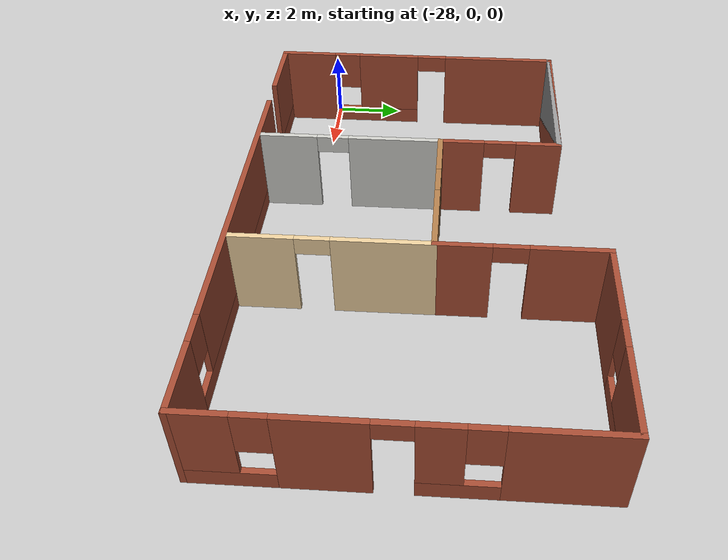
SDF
<?xml version='1.0'?>
<sdf version='1.7'>
  <model name='my_building'>
    <pose>-13.7626 3.17257 0 0 -0 0</pose>
    <link name='Wall_0'>
      <collision name='Wall_0_Collision'>
        <geometry>
          <box>
            <size>4.75 0.15 2.5</size>
          </box>
        </geometry>
        <pose>0 0 1.25 0 -0 0</pose>
      </collision>
      <visual name='Wall_0_Visual'>
        <pose>0 0 1.25 0 -0 0</pose>
        <geometry>
          <box>
            <size>4.75 0.15 2.5</size>
          </box>
        </geometry>
        <material>
          <script>
            <uri>file://media/materials/scripts/gazebo.material</uri>
            <name>Gazebo/Grey</name>
          </script>
          <ambient>1 1 1 1</ambient>
        </material>
        <meta>
          <layer>0</layer>
        </meta>
      </visual>
      <pose>-11.3376 3.8 0 0 -0 0</pose>
    </link>
    <link name='Wall_1'>
      <pose>-9.03756 2.125 0 0 -0 -1.5708</pose>
      <visual name='Wall_1_Visual_0'>
        <pose>-1.10816 0 1.25 0 -0 0</pose>
        <geometry>
          <box>
            <size>1.28368 0.15 2.5</size>
          </box>
        </geometry>
        <material>
          <script>
            <uri>file://media/materials/scripts/gazebo.material</uri>
            <name>Gazebo/Bricks</name>
          </script>
          <ambient>0.921569 0.807843 0.615686 1</ambient>
        </material>
        <meta>
          <layer>0</layer>
        </meta>
      </visual>
      <collision name='Wall_1_Collision_0'>
        <geometry>
          <box>
            <size>1.28368 0.15 2.5</size>
          </box>
        </geometry>
        <pose>-1.10816 0 1.25 0 -0 0</pose>
      </collision>
      <visual name='Wall_1_Visual_1'>
        <pose>1.09184 0 1.25 0 -0 0</pose>
        <geometry>
          <box>
            <size>1.31632 0.15 2.5</size>
          </box>
        </geometry>
        <material>
          <script>
            <uri>file://media/materials/scripts/gazebo.material</uri>
            <name>Gazebo/Bricks</name>
          </script>
          <ambient>0.921569 0.807843 0.615686 1</ambient>
        </material>
        <meta>
          <layer>0</layer>
        </meta>
      </visual>
      <collision name='Wall_1_Collision_1'>
        <geometry>
          <box>
            <size>1.31632 0.15 2.5</size>
          </box>
        </geometry>
        <pose>1.09184 0 1.25 0 -0 0</pose>
      </collision>
      <visual name='Wall_1_Visual_2'>
        <pose>-0.016321 0 2.25 0 -0 0</pose>
        <geometry>
          <box>
            <size>0.9 0.15 0.5</size>
          </box>
        </geometry>
        <material>
          <script>
            <uri>file://media/materials/scripts/gazebo.material</uri>
            <name>Gazebo/Bricks</name>
          </script>
          <ambient>0.921569 0.807843 0.615686 1</ambient>
        </material>
        <meta>
          <layer>0</layer>
        </meta>
      </visual>
      <collision name='Wall_1_Collision_2'>
        <geometry>
          <box>
            <size>0.9 0.15 0.5</size>
          </box>
        </geometry>
        <pose>-0.016321 0 2.25 0 -0 0</pose>
      </collision>
    </link>
    <link name='Wall_11'>
      <pose>-4.68756 -2.1 0 0 -0 -1.5708</pose>
      <visual name='Wall_11_Visual_0'>
        <pose>-1.29151 0 1.25 0 -0 0</pose>
        <geometry>
          <box>
            <size>2.66698 0.15 2.5</size>
          </box>
        </geometry>
        <material>
          <script>
            <uri>file://media/materials/scripts/gazebo.material</uri>
            <name>Gazebo/Grey</name>
          </script>
          <ambient>0.921569 0.807843 0.615686 1</ambient>
        </material>
        <meta>
          <layer>0</layer>
        </meta>
      </visual>
      <collision name='Wall_11_Collision_0'>
        <geometry>
          <box>
            <size>2.66698 0.15 2.5</size>
          </box>
        </geometry>
        <pose>-1.29151 0 1.25 0 -0 0</pose>
      </collision>
      <visual name='Wall_11_Visual_1'>
        <pose>1.78349 0 1.25 0 -0 0</pose>
        <geometry>
          <box>
            <size>1.68302 0.15 2.5</size>
          </box>
        </geometry>
        <material>
          <script>
            <uri>file://media/materials/scripts/gazebo.material</uri>
            <name>Gazebo/Grey</name>
          </script>
          <ambient>0.921569 0.807843 0.615686 1</ambient>
        </material>
        <meta>
          <layer>0</layer>
        </meta>
      </visual>
      <collision name='Wall_11_Collision_1'>
        <geometry>
          <box>
            <size>1.68302 0.15 2.5</size>
          </box>
        </geometry>
        <pose>1.78349 0 1.25 0 -0 0</pose>
      </collision>
      <visual name='Wall_11_Visual_2'>
        <pose>0.491981 0 2.25 0 -0 0</pose>
        <geometry>
          <box>
            <size>0.9 0.15 0.5</size>
          </box>
        </geometry>
        <material>
          <script>
            <uri>file://media/materials/scripts/gazebo.material</uri>
            <name>Gazebo/Grey</name>
          </script>
          <ambient>0.921569 0.807843 0.615686 1</ambient>
        </material>
        <meta>
          <layer>0</layer>
        </meta>
      </visual>
      <collision name='Wall_11_Collision_2'>
        <geometry>
          <box>
            <size>0.9 0.15 0.5</size>
          </box>
        </geometry>
        <pose>0.491981 0 2.25 0 -0 0</pose>
      </collision>
    </link>
    <link name='Wall_13'>
      <pose>-9.03756 -2.1 0 0 -0 -1.5708</pose>
      <visual name='Wall_13_Visual_0'>
        <pose>-1.27128 0 1.25 0 -0 0</pose>
        <geometry>
          <box>
            <size>2.70744 0.15 2.5</size>
          </box>
        </geometry>
        <material>
          <script>
            <uri>file://media/materials/scripts/gazebo.material</uri>
            <name>Gazebo/CeilingTiled</name>
          </script>
          <ambient>0.921569 0.807843 0.615686 1</ambient>
        </material>
        <meta>
          <layer>0</layer>
        </meta>
      </visual>
      <collision name='Wall_13_Collision_0'>
        <geometry>
          <box>
            <size>2.70744 0.15 2.5</size>
          </box>
        </geometry>
        <pose>-1.27128 0 1.25 0 -0 0</pose>
      </collision>
      <visual name='Wall_13_Visual_1'>
        <pose>1.80372 0 1.25 0 -0 0</pose>
        <geometry>
          <box>
            <size>1.64256 0.15 2.5</size>
          </box>
        </geometry>
        <material>
          <script>
            <uri>file://media/materials/scripts/gazebo.material</uri>
            <name>Gazebo/CeilingTiled</name>
          </script>
          <ambient>0.921569 0.807843 0.615686 1</ambient>
        </material>
        <meta>
          <layer>0</layer>
        </meta>
      </visual>
      <collision name='Wall_13_Collision_1'>
        <geometry>
          <box>
            <size>1.64256 0.15 2.5</size>
          </box>
        </geometry>
        <pose>1.80372 0 1.25 0 -0 0</pose>
      </collision>
      <visual name='Wall_13_Visual_2'>
        <pose>0.532437 0 2.25 0 -0 0</pose>
        <geometry>
          <box>
            <size>0.9 0.15 0.5</size>
          </box>
        </geometry>
        <material>
          <script>
            <uri>file://media/materials/scripts/gazebo.material</uri>
            <name>Gazebo/CeilingTiled</name>
          </script>
          <ambient>0.921569 0.807843 0.615686 1</ambient>
        </material>
        <meta>
          <layer>0</layer>
        </meta>
      </visual>
      <collision name='Wall_13_Collision_2'>
        <geometry>
          <box>
            <size>0.9 0.15 0.5</size>
          </box>
        </geometry>
        <pose>0.532437 0 2.25 0 -0 0</pose>
      </collision>
    </link>
    <link name='Wall_2'>
      <pose>-6.86256 0.45 0 0 -0 0</pose>
      <visual name='Wall_2_Visual_0'>
        <pose>-1.54151 0 1.25 0 -0 0</pose>
        <geometry>
          <box>
            <size>1.41698 0.15 2.5</size>
          </box>
        </geometry>
        <material>
          <script>
            <uri>file://media/materials/scripts/gazebo.material</uri>
            <name>Gazebo/Wood</name>
          </script>
          <ambient>1 1 1 1</ambient>
        </material>
        <meta>
          <layer>0</layer>
        </meta>
      </visual>
      <collision name='Wall_2_Collision_0'>
        <geometry>
          <box>
            <size>1.41698 0.15 2.5</size>
          </box>
        </geometry>
        <pose>-1.54151 0 1.25 0 -0 0</pose>
      </collision>
      <visual name='Wall_2_Visual_1'>
        <pose>1.15849 0 1.25 0 -0 0</pose>
        <geometry>
          <box>
            <size>2.18302 0.15 2.5</size>
          </box>
        </geometry>
        <material>
          <script>
            <uri>file://media/materials/scripts/gazebo.material</uri>
            <name>Gazebo/Wood</name>
          </script>
          <ambient>1 1 1 1</ambient>
        </material>
        <meta>
          <layer>0</layer>
        </meta>
      </visual>
      <collision name='Wall_2_Collision_1'>
        <geometry>
          <box>
            <size>2.18302 0.15 2.5</size>
          </box>
        </geometry>
        <pose>1.15849 0 1.25 0 -0 0</pose>
      </collision>
      <visual name='Wall_2_Visual_2'>
        <pose>-0.383018 0 2.25 0 -0 0</pose>
        <geometry>
          <box>
            <size>0.9 0.15 0.5</size>
          </box>
        </geometry>
        <material>
          <script>
            <uri>file://media/materials/scripts/gazebo.material</uri>
            <name>Gazebo/Wood</name>
          </script>
          <ambient>1 1 1 1</ambient>
        </material>
        <meta>
          <layer>0</layer>
        </meta>
      </visual>
      <collision name='Wall_2_Collision_2'>
        <geometry>
          <box>
            <size>0.9 0.15 0.5</size>
          </box>
        </geometry>
        <pose>-0.383018 0 2.25 0 -0 0</pose>
      </collision>
    </link>
    <link name='Wall_3'>
      <pose>-4.68756 2.625 0 0 -0 1.5708</pose>
      <visual name='Wall_3_Visual_0'>
        <pose>-1.4907 0 1.25 0 -0 0</pose>
        <geometry>
          <box>
            <size>1.5186 0.15 2.5</size>
          </box>
        </geometry>
        <material>
          <script>
            <uri>file://media/materials/scripts/gazebo.material</uri>
            <name>Gazebo/Bricks</name>
          </script>
          <ambient>0.921569 0.807843 0.615686 1</ambient>
        </material>
        <meta>
          <layer>0</layer>
        </meta>
      </visual>
      <collision name='Wall_3_Collision_0'>
        <geometry>
          <box>
            <size>1.5186 0.15 2.5</size>
          </box>
        </geometry>
        <pose>-1.4907 0 1.25 0 -0 0</pose>
      </collision>
      <visual name='Wall_3_Visual_1'>
        <pose>1.2093 0 1.25 0 -0 0</pose>
        <geometry>
          <box>
            <size>2.0814 0.15 2.5</size>
          </box>
        </geometry>
        <material>
          <script>
            <uri>file://media/materials/scripts/gazebo.material</uri>
            <name>Gazebo/Bricks</name>
          </script>
          <ambient>0.921569 0.807843 0.615686 1</ambient>
        </material>
        <meta>
          <layer>0</layer>
        </meta>
      </visual>
      <collision name='Wall_3_Collision_1'>
        <geometry>
          <box>
            <size>2.0814 0.15 2.5</size>
          </box>
        </geometry>
        <pose>1.2093 0 1.25 0 -0 0</pose>
      </collision>
      <visual name='Wall_3_Visual_2'>
        <pose>-0.281401 0 2.25 0 -0 0</pose>
        <geometry>
          <box>
            <size>0.9 0.15 0.5</size>
          </box>
        </geometry>
        <material>
          <script>
            <uri>file://media/materials/scripts/gazebo.material</uri>
            <name>Gazebo/Bricks</name>
          </script>
          <ambient>0.921569 0.807843 0.615686 1</ambient>
        </material>
        <meta>
          <layer>0</layer>
        </meta>
      </visual>
      <collision name='Wall_3_Collision_2'>
        <geometry>
          <box>
            <size>0.9 0.15 0.5</size>
          </box>
        </geometry>
        <pose>-0.281401 0 2.25 0 -0 0</pose>
      </collision>
    </link>
    <link name='Wall_4'>
      <pose>-2.01256 4.8 0 0 -0 0</pose>
      <visual name='Wall_4_Visual_0'>
        <pose>-1.58212 0 1.25 0 -0 0</pose>
        <geometry>
          <box>
            <size>2.33575 0.15 2.5</size>
          </box>
        </geometry>
        <material>
          <script>
            <uri>file://media/materials/scripts/gazebo.material</uri>
            <name>Gazebo/Bricks</name>
          </script>
          <ambient>0.921569 0.807843 0.615686 1</ambient>
        </material>
        <meta>
          <layer>0</layer>
        </meta>
      </visual>
      <collision name='Wall_4_Collision_0'>
        <geometry>
          <box>
            <size>2.33575 0.15 2.5</size>
          </box>
        </geometry>
        <pose>-1.58212 0 1.25 0 -0 0</pose>
      </collision>
      <visual name='Wall_4_Visual_1'>
        <pose>1.16788 0 0.25 0 -0 0</pose>
        <geometry>
          <box>
            <size>3.16425 0.15 0.5</size>
          </box>
        </geometry>
        <material>
          <script>
            <uri>file://media/materials/scripts/gazebo.material</uri>
            <name>Gazebo/Bricks</name>
          </script>
          <ambient>0.921569 0.807843 0.615686 1</ambient>
        </material>
        <meta>
          <layer>0</layer>
        </meta>
      </visual>
      <collision name='Wall_4_Collision_1'>
        <geometry>
          <box>
            <size>3.16425 0.15 0.5</size>
          </box>
        </geometry>
        <pose>1.16788 0 0.25 0 -0 0</pose>
      </collision>
      <visual name='Wall_4_Visual_2'>
        <pose>1.56788 0 1.5 0 -0 0</pose>
        <geometry>
          <box>
            <size>2.36425 0.15 2</size>
          </box>
        </geometry>
        <material>
          <script>
            <uri>file://media/materials/scripts/gazebo.material</uri>
            <name>Gazebo/Bricks</name>
          </script>
          <ambient>0.921569 0.807843 0.615686 1</ambient>
        </material>
        <meta>
          <layer>0</layer>
        </meta>
      </visual>
      <collision name='Wall_4_Collision_2'>
        <geometry>
          <box>
            <size>2.36425 0.15 2</size>
          </box>
        </geometry>
        <pose>1.56788 0 1.5 0 -0 0</pose>
      </collision>
      <visual name='Wall_4_Visual_3'>
        <pose>-0.014249 0 1.9 0 -0 0</pose>
        <geometry>
          <box>
            <size>0.8 0.15 1.2</size>
          </box>
        </geometry>
        <material>
          <script>
            <uri>file://media/materials/scripts/gazebo.material</uri>
            <name>Gazebo/Bricks</name>
          </script>
          <ambient>0.921569 0.807843 0.615686 1</ambient>
        </material>
        <meta>
          <layer>0</layer>
        </meta>
      </visual>
      <collision name='Wall_4_Collision_3'>
        <geometry>
          <box>
            <size>0.8 0.15 1.2</size>
          </box>
        </geometry>
        <pose>-0.014249 0 1.9 0 -0 0</pose>
      </collision>
    </link>
    <link name='Wall_5'>
      <pose>0.662438 0 0 0 -0 -1.5708</pose>
      <visual name='Wall_5_Visual_0'>
        <pose>-3.50588 0 1.25 0 -0 0</pose>
        <geometry>
          <box>
            <size>2.73823 0.15 2.5</size>
          </box>
        </geometry>
        <material>
          <script>
            <uri>file://media/materials/scripts/gazebo.material</uri>
            <name>Gazebo/Bricks</name>
          </script>
          <ambient>0.921569 0.807843 0.615686 1</ambient>
        </material>
        <meta>
          <layer>0</layer>
        </meta>
      </visual>
      <collision name='Wall_5_Collision_0'>
        <geometry>
          <box>
            <size>2.73823 0.15 2.5</size>
          </box>
        </geometry>
        <pose>-3.50588 0 1.25 0 -0 0</pose>
      </collision>
      <visual name='Wall_5_Visual_1'>
        <pose>1.64605 0 1.25 0 -0 0</pose>
        <geometry>
          <box>
            <size>2.0628 0.15 2.5</size>
          </box>
        </geometry>
        <material>
          <script>
            <uri>file://media/materials/scripts/gazebo.material</uri>
            <name>Gazebo/Bricks</name>
          </script>
          <ambient>0.921569 0.807843 0.615686 1</ambient>
        </material>
        <meta>
          <layer>0</layer>
        </meta>
      </visual>
      <collision name='Wall_5_Collision_1'>
        <geometry>
          <box>
            <size>2.0628 0.15 2.5</size>
          </box>
        </geometry>
        <pose>1.64605 0 1.25 0 -0 0</pose>
      </collision>
      <visual name='Wall_5_Visual_2'>
        <pose>-1.21106 0 0.25 0 -0 0</pose>
        <geometry>
          <box>
            <size>1.85141 0.15 0.5</size>
          </box>
        </geometry>
        <material>
          <script>
            <uri>file://media/materials/scripts/gazebo.material</uri>
            <name>Gazebo/Bricks</name>
          </script>
          <ambient>0.921569 0.807843 0.615686 1</ambient>
        </material>
        <meta>
          <layer>0</layer>
        </meta>
      </visual>
      <collision name='Wall_5_Collision_2'>
        <geometry>
          <box>
            <size>1.85141 0.15 0.5</size>
          </box>
        </geometry>
        <pose>-1.21106 0 0.25 0 -0 0</pose>
      </collision>
      <visual name='Wall_5_Visual_3'>
        <pose>3.77622 0 0.25 0 -0 0</pose>
        <geometry>
          <box>
            <size>2.19755 0.15 0.5</size>
          </box>
        </geometry>
        <material>
          <script>
            <uri>file://media/materials/scripts/gazebo.material</uri>
            <name>Gazebo/Bricks</name>
          </script>
          <ambient>0.921569 0.807843 0.615686 1</ambient>
        </material>
        <meta>
          <layer>0</layer>
        </meta>
      </visual>
      <collision name='Wall_5_Collision_3'>
        <geometry>
          <box>
            <size>2.19755 0.15 0.5</size>
          </box>
        </geometry>
        <pose>3.77622 0 0.25 0 -0 0</pose>
      </collision>
      <visual name='Wall_5_Visual_4'>
        <pose>-0.811059 0 1.5 0 -0 0</pose>
        <geometry>
          <box>
            <size>1.05141 0.15 2</size>
          </box>
        </geometry>
        <material>
          <script>
            <uri>file://media/materials/scripts/gazebo.material</uri>
            <name>Gazebo/Bricks</name>
          </script>
          <ambient>0.921569 0.807843 0.615686 1</ambient>
        </material>
        <meta>
          <layer>0</layer>
        </meta>
      </visual>
      <collision name='Wall_5_Collision_4'>
        <geometry>
          <box>
            <size>1.05141 0.15 2</size>
          </box>
        </geometry>
        <pose>-0.811059 0 1.5 0 -0 0</pose>
      </collision>
      <visual name='Wall_5_Visual_5'>
        <pose>-0.811059 0 1.5 0 -0 0</pose>
        <geometry>
          <box>
            <size>1.05141 0.15 2</size>
          </box>
        </geometry>
        <material>
          <script>
            <uri>file://media/materials/scripts/gazebo.material</uri>
            <name>Gazebo/Bricks</name>
          </script>
          <ambient>0.921569 0.807843 0.615686 1</ambient>
        </material>
        <meta>
          <layer>0</layer>
        </meta>
      </visual>
      <collision name='Wall_5_Collision_5'>
        <geometry>
          <box>
            <size>1.05141 0.15 2</size>
          </box>
        </geometry>
        <pose>-0.811059 0 1.5 0 -0 0</pose>
      </collision>
      <visual name='Wall_5_Visual_6'>
        <pose>4.17622 0 1.5 0 -0 0</pose>
        <geometry>
          <box>
            <size>1.39755 0.15 2</size>
          </box>
        </geometry>
        <material>
          <script>
            <uri>file://media/materials/scripts/gazebo.material</uri>
            <name>Gazebo/Bricks</name>
          </script>
          <ambient>0.921569 0.807843 0.615686 1</ambient>
        </material>
        <meta>
          <layer>0</layer>
        </meta>
      </visual>
      <collision name='Wall_5_Collision_6'>
        <geometry>
          <box>
            <size>1.39755 0.15 2</size>
          </box>
        </geometry>
        <pose>4.17622 0 1.5 0 -0 0</pose>
      </collision>
      <visual name='Wall_5_Visual_7'>
        <pose>-1.73676 0 1.9 0 -0 0</pose>
        <geometry>
          <box>
            <size>0.8 0.15 1.2</size>
          </box>
        </geometry>
        <material>
          <script>
            <uri>file://media/materials/scripts/gazebo.material</uri>
            <name>Gazebo/Bricks</name>
          </script>
          <ambient>0.921569 0.807843 0.615686 1</ambient>
        </material>
        <meta>
          <layer>0</layer>
        </meta>
      </visual>
      <collision name='Wall_5_Collision_7'>
        <geometry>
          <box>
            <size>0.8 0.15 1.2</size>
          </box>
        </geometry>
        <pose>-1.73676 0 1.9 0 -0 0</pose>
      </collision>
      <visual name='Wall_5_Visual_8'>
        <pose>3.07745 0 1.9 0 -0 0</pose>
        <geometry>
          <box>
            <size>0.8 0.15 1.2</size>
          </box>
        </geometry>
        <material>
          <script>
            <uri>file://media/materials/scripts/gazebo.material</uri>
            <name>Gazebo/Bricks</name>
          </script>
          <ambient>0.921569 0.807843 0.615686 1</ambient>
        </material>
        <meta>
          <layer>0</layer>
        </meta>
      </visual>
      <collision name='Wall_5_Collision_8'>
        <geometry>
          <box>
            <size>0.8 0.15 1.2</size>
          </box>
        </geometry>
        <pose>3.07745 0 1.9 0 -0 0</pose>
      </collision>
      <visual name='Wall_5_Visual_9'>
        <pose>0.164647 0 2.25 0 -0 0</pose>
        <geometry>
          <box>
            <size>0.9 0.15 0.5</size>
          </box>
        </geometry>
        <material>
          <script>
            <uri>file://media/materials/scripts/gazebo.material</uri>
            <name>Gazebo/Bricks</name>
          </script>
          <ambient>0.921569 0.807843 0.615686 1</ambient>
        </material>
        <meta>
          <layer>0</layer>
        </meta>
      </visual>
      <collision name='Wall_5_Collision_9'>
        <geometry>
          <box>
            <size>0.9 0.15 0.5</size>
          </box>
        </geometry>
        <pose>0.164647 0 2.25 0 -0 0</pose>
      </collision>
      <visual name='Wall_5_Visual_10'>
        <pose>0.164647 0 2.25 0 -0 0</pose>
        <geometry>
          <box>
            <size>0.9 0.15 0.5</size>
          </box>
        </geometry>
        <material>
          <script>
            <uri>file://media/materials/scripts/gazebo.material</uri>
            <name>Gazebo/Bricks</name>
          </script>
          <ambient>0.921569 0.807843 0.615686 1</ambient>
        </material>
        <meta>
          <layer>0</layer>
        </meta>
      </visual>
      <collision name='Wall_5_Collision_10'>
        <geometry>
          <box>
            <size>0.9 0.15 0.5</size>
          </box>
        </geometry>
        <pose>0.164647 0 2.25 0 -0 0</pose>
      </collision>
    </link>
    <link name='Wall_6'>
      <pose>-6.51256 -4.8 0 0 -0 3.14159</pose>
      <visual name='Wall_6_Visual_0'>
        <pose>-6.29038 0 1.25 0 -0 0</pose>
        <geometry>
          <box>
            <size>1.91924 0.15 2.5</size>
          </box>
        </geometry>
        <material>
          <script>
            <uri>file://media/materials/scripts/gazebo.material</uri>
            <name>Gazebo/Bricks</name>
          </script>
          <ambient>1 1 1 1</ambient>
        </material>
        <meta>
          <layer>0</layer>
        </meta>
      </visual>
      <collision name='Wall_6_Collision_0'>
        <geometry>
          <box>
            <size>1.91924 0.15 2.5</size>
          </box>
        </geometry>
        <pose>-6.29038 0 1.25 0 -0 0</pose>
      </collision>
      <visual name='Wall_6_Visual_1'>
        <pose>0.959619 0 0.25 0 -0 0</pose>
        <geometry>
          <box>
            <size>12.5808 0.15 0.5</size>
          </box>
        </geometry>
        <material>
          <script>
            <uri>file://media/materials/scripts/gazebo.material</uri>
            <name>Gazebo/Bricks</name>
          </script>
          <ambient>1 1 1 1</ambient>
        </material>
        <meta>
          <layer>0</layer>
        </meta>
      </visual>
      <collision name='Wall_6_Collision_1'>
        <geometry>
          <box>
            <size>12.5808 0.15 0.5</size>
          </box>
        </geometry>
        <pose>0.959619 0 0.25 0 -0 0</pose>
      </collision>
      <visual name='Wall_6_Visual_2'>
        <pose>-0.116549 0 1.5 0 -0 0</pose>
        <geometry>
          <box>
            <size>8.82843 0.15 2</size>
          </box>
        </geometry>
        <material>
          <script>
            <uri>file://media/materials/scripts/gazebo.material</uri>
            <name>Gazebo/Bricks</name>
          </script>
          <ambient>1 1 1 1</ambient>
        </material>
        <meta>
          <layer>0</layer>
        </meta>
      </visual>
      <collision name='Wall_6_Collision_2'>
        <geometry>
          <box>
            <size>8.82843 0.15 2</size>
          </box>
        </geometry>
        <pose>-0.116549 0 1.5 0 -0 0</pose>
      </collision>
      <visual name='Wall_6_Visual_3'>
        <pose>6.17383 0 1.5 0 -0 0</pose>
        <geometry>
          <box>
            <size>2.15234 0.15 2</size>
          </box>
        </geometry>
        <material>
          <script>
            <uri>file://media/materials/scripts/gazebo.material</uri>
            <name>Gazebo/Bricks</name>
          </script>
          <ambient>1 1 1 1</ambient>
        </material>
        <meta>
          <layer>0</layer>
        </meta>
      </visual>
      <collision name='Wall_6_Collision_3'>
        <geometry>
          <box>
            <size>2.15234 0.15 2</size>
          </box>
        </geometry>
        <pose>6.17383 0 1.5 0 -0 0</pose>
      </collision>
      <visual name='Wall_6_Visual_4'>
        <pose>-4.93076 0 1.9 0 -0 0</pose>
        <geometry>
          <box>
            <size>0.8 0.15 1.2</size>
          </box>
        </geometry>
        <material>
          <script>
            <uri>file://media/materials/scripts/gazebo.material</uri>
            <name>Gazebo/Bricks</name>
          </script>
          <ambient>1 1 1 1</ambient>
        </material>
        <meta>
          <layer>0</layer>
        </meta>
      </visual>
      <collision name='Wall_6_Collision_4'>
        <geometry>
          <box>
            <size>0.8 0.15 1.2</size>
          </box>
        </geometry>
        <pose>-4.93076 0 1.9 0 -0 0</pose>
      </collision>
      <visual name='Wall_6_Visual_5'>
        <pose>4.29766 0 1.9 0 -0 0</pose>
        <geometry>
          <box>
            <size>0 0.15 1.2</size>
          </box>
        </geometry>
        <material>
          <script>
            <uri>file://media/materials/scripts/gazebo.material</uri>
            <name>Gazebo/Bricks</name>
          </script>
          <ambient>1 1 1 1</ambient>
        </material>
        <meta>
          <layer>0</layer>
        </meta>
      </visual>
      <collision name='Wall_6_Collision_5'>
        <geometry>
          <box>
            <size>0 0.15 1.2</size>
          </box>
        </geometry>
        <pose>4.29766 0 1.9 0 -0 0</pose>
      </collision>
    </link>
    <link name='Wall_7'>
      <pose>-13.6876 -0.5 0 0 -0 1.5708</pose>
      <visual name='Wall_7_Visual_0'>
        <pose>-3.5144 0 1.25 0 -0 0</pose>
        <geometry>
          <box>
            <size>1.7212 0.15 2.5</size>
          </box>
        </geometry>
        <material>
          <script>
            <uri>file://media/materials/scripts/gazebo.material</uri>
            <name>Gazebo/Bricks</name>
          </script>
          <ambient>0.921569 0.807843 0.615686 1</ambient>
        </material>
        <meta>
          <layer>0</layer>
        </meta>
      </visual>
      <collision name='Wall_7_Collision_0'>
        <geometry>
          <box>
            <size>1.7212 0.15 2.5</size>
          </box>
        </geometry>
        <pose>-3.5144 0 1.25 0 -0 0</pose>
      </collision>
      <visual name='Wall_7_Visual_1'>
        <pose>2.66109 0 1.25 0 -0 0</pose>
        <geometry>
          <box>
            <size>3.42782 0.15 2.5</size>
          </box>
        </geometry>
        <material>
          <script>
            <uri>file://media/materials/scripts/gazebo.material</uri>
            <name>Gazebo/Bricks</name>
          </script>
          <ambient>0.921569 0.807843 0.615686 1</ambient>
        </material>
        <meta>
          <layer>0</layer>
        </meta>
      </visual>
      <collision name='Wall_7_Collision_1'>
        <geometry>
          <box>
            <size>3.42782 0.15 2.5</size>
          </box>
        </geometry>
        <pose>2.66109 0 1.25 0 -0 0</pose>
      </collision>
      <visual name='Wall_7_Visual_2'>
        <pose>-1.30331 0 0.25 0 -0 0</pose>
        <geometry>
          <box>
            <size>2.70098 0.15 0.5</size>
          </box>
        </geometry>
        <material>
          <script>
            <uri>file://media/materials/scripts/gazebo.material</uri>
            <name>Gazebo/Bricks</name>
          </script>
          <ambient>0.921569 0.807843 0.615686 1</ambient>
        </material>
        <meta>
          <layer>0</layer>
        </meta>
      </visual>
      <collision name='Wall_7_Collision_2'>
        <geometry>
          <box>
            <size>2.70098 0.15 0.5</size>
          </box>
        </geometry>
        <pose>-1.30331 0 0.25 0 -0 0</pose>
      </collision>
      <visual name='Wall_7_Visual_3'>
        <pose>-0.903314 0 1.5 0 -0 0</pose>
        <geometry>
          <box>
            <size>1.90098 0.15 2</size>
          </box>
        </geometry>
        <material>
          <script>
            <uri>file://media/materials/scripts/gazebo.material</uri>
            <name>Gazebo/Bricks</name>
          </script>
          <ambient>0.921569 0.807843 0.615686 1</ambient>
        </material>
        <meta>
          <layer>0</layer>
        </meta>
      </visual>
      <collision name='Wall_7_Collision_3'>
        <geometry>
          <box>
            <size>1.90098 0.15 2</size>
          </box>
        </geometry>
        <pose>-0.903314 0 1.5 0 -0 0</pose>
      </collision>
      <visual name='Wall_7_Visual_4'>
        <pose>-2.2538 0 1.9 0 -0 0</pose>
        <geometry>
          <box>
            <size>0.8 0.15 1.2</size>
          </box>
        </geometry>
        <material>
          <script>
            <uri>file://media/materials/scripts/gazebo.material</uri>
            <name>Gazebo/Bricks</name>
          </script>
          <ambient>0.921569 0.807843 0.615686 1</ambient>
        </material>
        <meta>
          <layer>0</layer>
        </meta>
      </visual>
      <collision name='Wall_7_Collision_4'>
        <geometry>
          <box>
            <size>0.8 0.15 1.2</size>
          </box>
        </geometry>
        <pose>-2.2538 0 1.9 0 -0 0</pose>
      </collision>
      <visual name='Wall_7_Visual_5'>
        <pose>0.497176 0 2.25 0 -0 0</pose>
        <geometry>
          <box>
            <size>0.9 0.15 0.5</size>
          </box>
        </geometry>
        <material>
          <script>
            <uri>file://media/materials/scripts/gazebo.material</uri>
            <name>Gazebo/Bricks</name>
          </script>
          <ambient>0.921569 0.807843 0.615686 1</ambient>
        </material>
        <meta>
          <layer>0</layer>
        </meta>
      </visual>
      <collision name='Wall_7_Collision_5'>
        <geometry>
          <box>
            <size>0.9 0.15 0.5</size>
          </box>
        </geometry>
        <pose>0.497176 0 2.25 0 -0 0</pose>
      </collision>
    </link>
    <link name='Wall_8'>
      <collision name='Wall_8_Collision'>
        <geometry>
          <box>
            <size>4.8 0.15 2.5</size>
          </box>
        </geometry>
        <pose>0 0 1.25 0 -0 0</pose>
      </collision>
      <visual name='Wall_8_Visual'>
        <pose>0 0 1.25 0 -0 0</pose>
        <geometry>
          <box>
            <size>4.8 0.15 2.5</size>
          </box>
        </geometry>
        <material>
          <script>
            <uri>file://media/materials/scripts/gazebo.material</uri>
            <name>Gazebo/Bricks</name>
          </script>
          <ambient>0.921569 0.807843 0.615686 1</ambient>
        </material>
        <meta>
          <layer>0</layer>
        </meta>
      </visual>
      <pose>-11.3626 3.8 0 0 -0 0</pose>
    </link>
    <static>1</static>
  </model>
</sdf>
